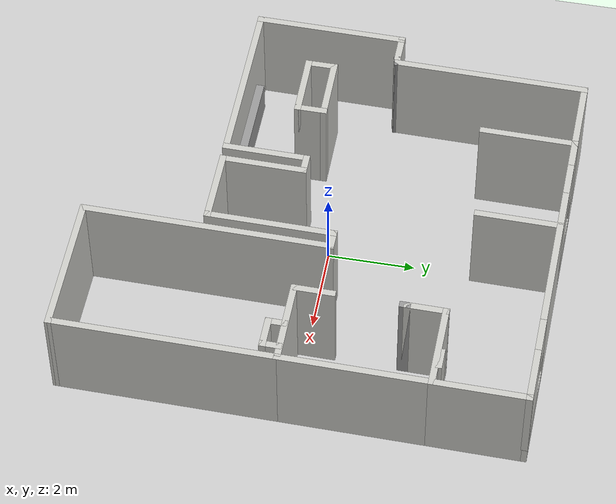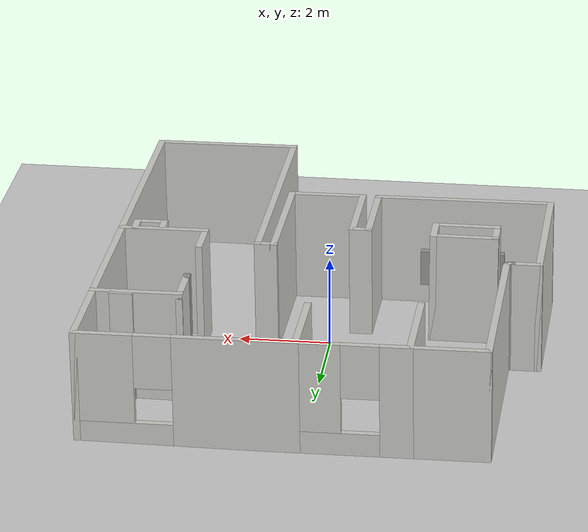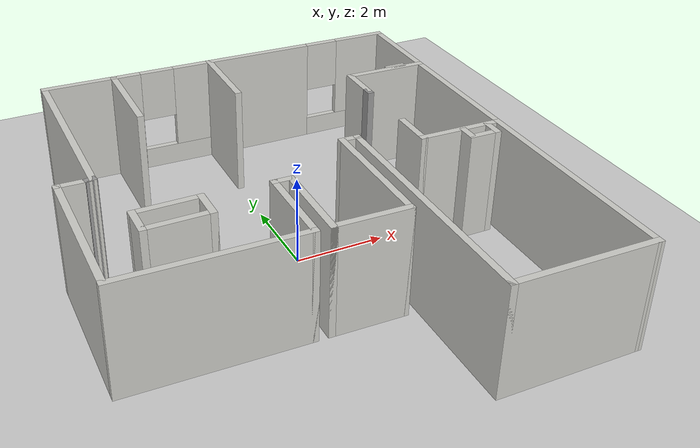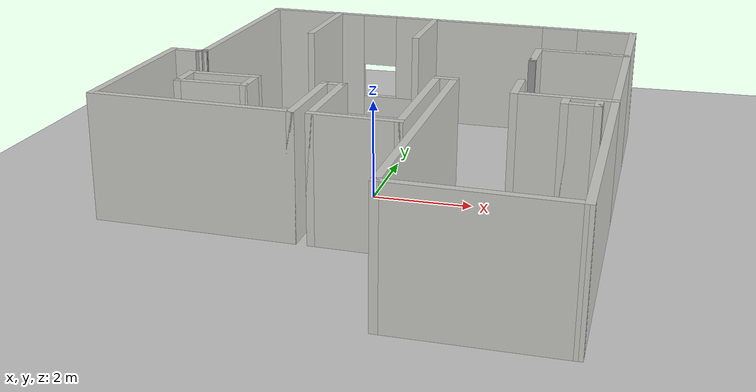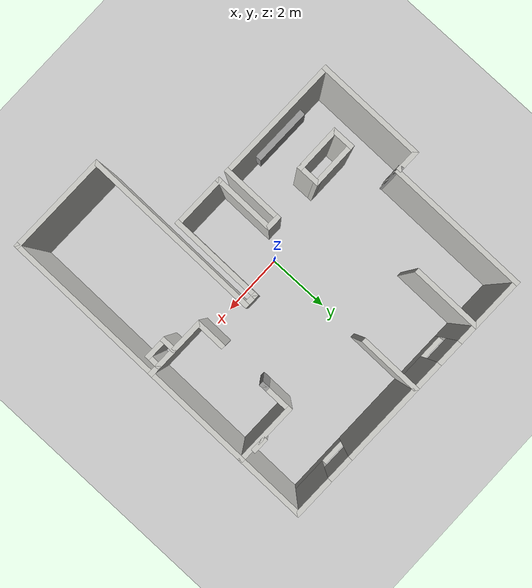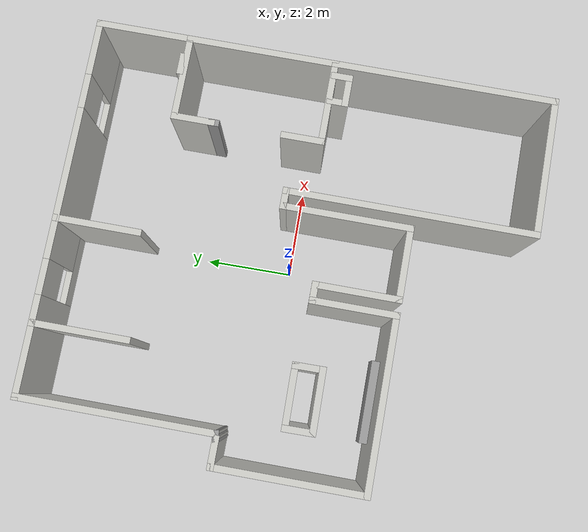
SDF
<sdf version="1.6">
 <world name="default">
  <light name="sun" type="directional">
   <pose>0 0 10 0 -0 0</pose>
   <diffuse>0.8 0.8 0.8 1</diffuse>
   <specular>0.2 0.2 0.2 1</specular>
   <attenuation>
    <range>1000</range>
    <constant>0.9</constant>
    <linear>0.01</linear>
    <quadratic>0.001</quadratic>
   </attenuation>
   <direction>-0.5 0.1 -0.9</direction>
  </light>
  <model name="ground_plane">
   <static>1</static>
   <link name="link">
    <collision name="collision">
     <geometry><plane><normal>0 0 1</normal><size>100 100</size></plane></geometry>
     <surface><friction><ode><mu>100</mu><mu2>50</mu2></ode></friction></surface>
    </collision>
    <visual name="visual">
     <cast_shadows>0</cast_shadows>
     <geometry><plane><normal>0 0 1</normal><size>100 100</size></plane></geometry>
     <material>
      <script><uri>file://media/materials/scripts/gazebo.material</uri><name>Gazebo/Grey</name></script>
     </material>
    </visual>
   </link>
  </model>
  <gravity>0 0 -9.8</gravity>
  <magnetic_field>6e-06 2.3e-05 -4.2e-05</magnetic_field>
  <atmosphere type="adiabatic"/>
  <physics name="default_physics" default="0" type="ode">
   <max_step_size>0.001</max_step_size>
   <real_time_factor>1</real_time_factor>
   <real_time_update_rate>1000</real_time_update_rate>
  </physics>
  <scene><ambient>0.4 0.4 0.4 1</ambient><background>0.7 0.7 0.7 1</background><shadows>1</shadows></scene>
  <spherical_coordinates>
   <surface_model>EARTH_WGS84</surface_model>
   <latitude_deg>0</latitude_deg>
   <longitude_deg>0</longitude_deg>
   <elevation>0</elevation>
   <heading_deg>0</heading_deg>
  </spherical_coordinates>
  <model name="Untitled">
   <pose>-0.01893 -0.016621 1e-06 0.000521 -0.011803 3.12934</pose>
   <link name="Wall_0">
    <collision name="Wall_0_Collision">
     <geometry><box><size>3.25 0.15 2.5</size></box></geometry>
     <pose>0 0 1.25 0 -0 0</pose>
    </collision>
    <visual name="Wall_0_Visual">
     <pose>0 0 1.25 0 -0 0</pose>
     <geometry><box><size>3.25 0.15 2.5</size></box></geometry>
     <material>
      <script><uri>file://media/materials/scripts/gazebo.material</uri><name>Gazebo/CeilingTiled</name></script>
      <ambient>1 1 1 1</ambient>
     </material>
     <meta><layer>0</layer></meta>
    </visual>
    <pose>-3.07497 5.23792 0 0 -0 0</pose>
   </link>
   <link name="Wall_1">
    <collision name="Wall_1_Collision">
     <geometry><box><size>5.75 0.15 2.5</size></box></geometry>
     <pose>0 0 1.25 0 -0 0</pose>
    </collision>
    <visual name="Wall_1_Visual">
     <pose>0 0 1.25 0 -0 0</pose>
     <geometry><box><size>5.75 0.15 2.5</size></box></geometry>
     <material>
      <script><uri>file://media/materials/scripts/gazebo.material</uri><name>Gazebo/CeilingTiled</name></script>
      <ambient>1 1 1 1</ambient>
     </material>
     <meta><layer>0</layer></meta>
    </visual>
    <pose>-1.52497 2.43792 0 0 0 -1.5708</pose>
   </link>
   <link name="Wall_10">
    <collision name="Wall_10_Collision">
     <geometry><box><size>0.75 0.15 2.5</size></box></geometry>
     <pose>0 0 1.25 0 -0 0</pose>
    </collision>
    <visual name="Wall_10_Visual">
     <pose>0 0 1.25 0 -0 0</pose>
     <geometry><box><size>0.75 0.15 2.5</size></box></geometry>
     <material>
      <script><uri>file://media/materials/scripts/gazebo.material</uri><name>Gazebo/CeilingTiled</name></script>
      <ambient>1 1 1 1</ambient>
     </material>
     <meta><layer>0</layer></meta>
    </visual>
    <pose>4.32503 -0.862084 0 0 -0 3.14159</pose>
   </link>
   <link name="Wall_11">
    <collision name="Wall_11_Collision">
     <geometry><box><size>0.25 0.15 2.5</size></box></geometry>
     <pose>0 0 1.25 0 -0 0</pose>
    </collision>
    <visual name="Wall_11_Visual">
     <pose>0 0 1.25 0 -0 0</pose>
     <geometry><box><size>0.25 0.15 2.5</size></box></geometry>
     <material>
      <script><uri>file://media/materials/scripts/gazebo.material</uri><name>Gazebo/Grey</name></script>
      <ambient>1 1 1 1</ambient>
     </material>
     <meta><layer>0</layer></meta>
    </visual>
    <pose>3.97673 -0.875025 0 0 0 -2.87979</pose>
   </link>
   <link name="Wall_12">
    <collision name="Wall_12_Collision">
     <geometry><box><size>4.5 0.15 2.5</size></box></geometry>
     <pose>0 0 1.25 0 -0 0</pose>
    </collision>
    <visual name="Wall_12_Visual">
     <pose>0 0 1.25 0 -0 0</pose>
     <geometry><box><size>4.5 0.15 2.5</size></box></geometry>
     <material>
      <script><uri>file://media/materials/scripts/gazebo.material</uri><name>Gazebo/CeilingTiled</name></script>
      <ambient>1 1 1 1</ambient>
     </material>
     <meta><layer>0</layer></meta>
    </visual>
    <pose>3.92843 -3.06297 0 0 0 -1.5708</pose>
   </link>
   <link name="Wall_13">
    <collision name="Wall_13_Collision">
     <geometry><box><size>1.75 0.15 2.5</size></box></geometry>
     <pose>0 0 1.25 0 -0 0</pose>
    </collision>
    <visual name="Wall_13_Visual">
     <pose>0 0 1.25 0 -0 0</pose>
     <geometry><box><size>1.75 0.15 2.5</size></box></geometry>
     <material>
      <script><uri>file://media/materials/scripts/gazebo.material</uri><name>Gazebo/CeilingTiled</name></script>
      <ambient>1 1 1 1</ambient>
     </material>
     <meta><layer>0</layer></meta>
    </visual>
    <pose>3.12843 -5.23797 0 0 -0 3.14159</pose>
   </link>
   <link name="Wall_14">
    <collision name="Wall_14_Collision">
     <geometry><box><size>2.25 0.15 2.5</size></box></geometry>
     <pose>0 0 1.25 0 -0 0</pose>
    </collision>
    <visual name="Wall_14_Visual">
     <pose>0 0 1.25 0 -0 0</pose>
     <geometry><box><size>2.25 0.15 2.5</size></box></geometry>
     <material>
      <script><uri>file://media/materials/scripts/gazebo.material</uri><name>Gazebo/CeilingTiled</name></script>
      <ambient>1 1 1 1</ambient>
     </material>
     <meta><layer>0</layer></meta>
    </visual>
    <pose>2.32843 -4.18797 0 0 -0 1.5708</pose>
   </link>
   <link name="Wall_16">
    <pose>1.15343 -5.23797 0 0 -0 3.14159</pose>
    <visual name="Wall_16_Visual_0">
     <pose>-0.900628 0 1.25 0 -0 0</pose>
     <geometry><box><size>0.698745 0.15 2.5</size></box></geometry>
     <material>
      <script><uri>file://media/materials/scripts/gazebo.material</uri><name>Gazebo/CeilingTiled</name></script>
      <ambient>1 1 1 1</ambient>
     </material>
     <meta><layer>0</layer></meta>
    </visual>
    <collision name="Wall_16_Collision_0">
     <geometry><box><size>0.698745 0.15 2.5</size></box></geometry>
     <pose>-0.900628 0 1.25 0 -0 0</pose>
    </collision>
    <visual name="Wall_16_Visual_1">
     <pose>0.349372 0 0.25 0 -0 0</pose>
     <geometry><box><size>1.80126 0.15 0.5</size></box></geometry>
     <material>
      <script><uri>file://media/materials/scripts/gazebo.material</uri><name>Gazebo/CeilingTiled</name></script>
      <ambient>1 1 1 1</ambient>
     </material>
     <meta><layer>0</layer></meta>
    </visual>
    <collision name="Wall_16_Collision_1">
     <geometry><box><size>1.80126 0.15 0.5</size></box></geometry>
     <pose>0.349372 0 0.25 0 -0 0</pose>
    </collision>
    <visual name="Wall_16_Visual_2">
     <pose>0.749372 0 1.5 0 -0 0</pose>
     <geometry><box><size>1.00126 0.15 2</size></box></geometry>
     <material>
      <script><uri>file://media/materials/scripts/gazebo.material</uri><name>Gazebo/CeilingTiled</name></script>
      <ambient>1 1 1 1</ambient>
     </material>
     <meta><layer>0</layer></meta>
    </visual>
    <collision name="Wall_16_Collision_2">
     <geometry><box><size>1.00126 0.15 2</size></box></geometry>
     <pose>0.749372 0 1.5 0 -0 0</pose>
    </collision>
    <visual name="Wall_16_Visual_3">
     <pose>-0.151255 0 1.9 0 -0 0</pose>
     <geometry><box><size>0.8 0.15 1.2</size></box></geometry>
     <material>
      <script><uri>file://media/materials/scripts/gazebo.material</uri><name>Gazebo/CeilingTiled</name></script>
      <ambient>1 1 1 1</ambient>
     </material>
     <meta><layer>0</layer></meta>
    </visual>
    <collision name="Wall_16_Collision_3">
     <geometry><box><size>0.8 0.15 1.2</size></box></geometry>
     <pose>-0.151255 0 1.9 0 -0 0</pose>
    </collision>
   </link>
   <link name="Wall_17">
    <collision name="Wall_17_Collision">
     <geometry><box><size>2 0.15 2.5</size></box></geometry>
     <pose>0 0 1.25 0 -0 0</pose>
    </collision>
    <visual name="Wall_17_Visual">
     <pose>0 0 1.25 0 -0 0</pose>
     <geometry><box><size>2 0.15 2.5</size></box></geometry>
     <material>
      <script><uri>file://media/materials/scripts/gazebo.material</uri><name>Gazebo/CeilingTiled</name></script>
      <ambient>1 1 1 1</ambient>
     </material>
     <meta><layer>0</layer></meta>
    </visual>
    <pose>-0.021567 -4.31297 0 0 -0 1.5708</pose>
   </link>
   <link name="Wall_19">
    <pose>-2.32157 -5.23797 0 0 -0 3.14159</pose>
    <visual name="Wall_19_Visual_0">
     <pose>-1.05563 0 1.25 0 -0 0</pose>
     <geometry><box><size>2.63875 0.15 2.5</size></box></geometry>
     <material>
      <script><uri>file://media/materials/scripts/gazebo.material</uri><name>Gazebo/CeilingTiled</name></script>
      <ambient>1 1 1 1</ambient>
     </material>
     <meta><layer>0</layer></meta>
    </visual>
    <collision name="Wall_19_Collision_0">
     <geometry><box><size>2.63875 0.15 2.5</size></box></geometry>
     <pose>-1.05563 0 1.25 0 -0 0</pose>
    </collision>
    <visual name="Wall_19_Visual_1">
     <pose>1.31937 0 0.25 0 -0 0</pose>
     <geometry><box><size>2.11125 0.15 0.5</size></box></geometry>
     <material>
      <script><uri>file://media/materials/scripts/gazebo.material</uri><name>Gazebo/CeilingTiled</name></script>
      <ambient>1 1 1 1</ambient>
     </material>
     <meta><layer>0</layer></meta>
    </visual>
    <collision name="Wall_19_Collision_1">
     <geometry><box><size>2.11125 0.15 0.5</size></box></geometry>
     <pose>1.31937 0 0.25 0 -0 0</pose>
    </collision>
    <visual name="Wall_19_Visual_2">
     <pose>1.71937 0 1.5 0 -0 0</pose>
     <geometry><box><size>1.31126 0.15 2</size></box></geometry>
     <material>
      <script><uri>file://media/materials/scripts/gazebo.material</uri><name>Gazebo/CeilingTiled</name></script>
      <ambient>1 1 1 1</ambient>
     </material>
     <meta><layer>0</layer></meta>
    </visual>
    <collision name="Wall_19_Collision_2">
     <geometry><box><size>1.31126 0.15 2</size></box></geometry>
     <pose>1.71937 0 1.5 0 -0 0</pose>
    </collision>
    <visual name="Wall_19_Visual_3">
     <pose>0.663745 0 1.9 0 -0 0</pose>
     <geometry><box><size>0.8 0.15 1.2</size></box></geometry>
     <material>
      <script><uri>file://media/materials/scripts/gazebo.material</uri><name>Gazebo/CeilingTiled</name></script>
      <ambient>1 1 1 1</ambient>
     </material>
     <meta><layer>0</layer></meta>
    </visual>
    <collision name="Wall_19_Collision_3">
     <geometry><box><size>0.8 0.15 1.2</size></box></geometry>
     <pose>0.663745 0 1.9 0 -0 0</pose>
    </collision>
   </link>
   <link name="Wall_2">
    <collision name="Wall_2_Collision">
     <geometry><box><size>0.5 0.15 2.5</size></box></geometry>
     <pose>0 0 1.25 0 -0 0</pose>
    </collision>
    <visual name="Wall_2_Visual">
     <pose>0 0 1.25 0 -0 0</pose>
     <geometry><box><size>0.5 0.15 2.5</size></box></geometry>
     <material>
      <script><uri>file://media/materials/scripts/gazebo.material</uri><name>Gazebo/CeilingTiled</name></script>
      <ambient>1 1 1 1</ambient>
     </material>
     <meta><layer>0</layer></meta>
    </visual>
    <pose>-1.34997 -0.362084 0 0 -0 0</pose>
   </link>
   <link name="Wall_20">
    <collision name="Wall_20_Collision">
     <geometry><box><size>2.25 0.15 2.5</size></box></geometry>
     <pose>0 0 1.25 0 -0 0</pose>
    </collision>
    <visual name="Wall_20_Visual">
     <pose>0 0 1.25 0 -0 0</pose>
     <geometry><box><size>2.25 0.15 2.5</size></box></geometry>
     <material>
      <script><uri>file://media/materials/scripts/gazebo.material</uri><name>Gazebo/CeilingTiled</name></script>
      <ambient>1 1 1 1</ambient>
     </material>
     <meta><layer>0</layer></meta>
    </visual>
    <pose>-4.62157 -4.18797 0 0 -0 1.5708</pose>
   </link>
   <link name="Wall_21">
    <collision name="Wall_21_Collision">
     <geometry><box><size>2 0.15 2.5</size></box></geometry>
     <pose>0 0 1.25 0 -0 0</pose>
    </collision>
    <visual name="Wall_21_Visual">
     <pose>0 0 1.25 0 -0 0</pose>
     <geometry><box><size>2 0.15 2.5</size></box></geometry>
     <material>
      <script><uri>file://media/materials/scripts/gazebo.material</uri><name>Gazebo/CeilingTiled</name></script>
      <ambient>1 1 1 1</ambient>
     </material>
     <meta><layer>0</layer></meta>
    </visual>
    <pose>-3.69657 -3.13797 0 0 -0 0</pose>
   </link>
   <link name="Wall_22">
    <collision name="Wall_22_Collision">
     <geometry><box><size>1 0.15 2.5</size></box></geometry>
     <pose>0 0 1.25 0 -0 0</pose>
    </collision>
    <visual name="Wall_22_Visual">
     <pose>0 0 1.25 0 -0 0</pose>
     <geometry><box><size>1 0.15 2.5</size></box></geometry>
     <material>
      <script><uri>file://media/materials/scripts/gazebo.material</uri><name>Gazebo/CeilingTiled</name></script>
      <ambient>1 1 1 1</ambient>
     </material>
     <meta><layer>0</layer></meta>
    </visual>
    <pose>-2.77157 -2.71297 0 0 -0 1.5708</pose>
   </link>
   <link name="Wall_23">
    <collision name="Wall_23_Collision">
     <geometry><box><size>0.25 0.15 2.5</size></box></geometry>
     <pose>0 0 1.25 0 -0 0</pose>
    </collision>
    <visual name="Wall_23_Visual">
     <pose>0 0 1.25 0 -0 0</pose>
     <geometry><box><size>0.25 0.15 2.5</size></box></geometry>
     <material>
      <script><uri>file://media/materials/scripts/gazebo.material</uri><name>Gazebo/Grey</name></script>
      <ambient>1 1 1 1</ambient>
     </material>
     <meta><layer>0</layer></meta>
    </visual>
    <pose>-2.77157 -2.23797 0 0 -0 1.5708</pose>
   </link>
   <link name="Wall_27">
    <collision name="Wall_27_Collision">
     <geometry><box><size>0.5 0.15 2.5</size></box></geometry>
     <pose>0 0 1.25 0 -0 0</pose>
    </collision>
    <visual name="Wall_27_Visual">
     <pose>0 0 1.25 0 -0 0</pose>
     <geometry><box><size>0.5 0.15 2.5</size></box></geometry>
     <material>
      <script><uri>file://media/materials/scripts/gazebo.material</uri><name>Gazebo/CeilingTiled</name></script>
      <ambient>1 1 1 1</ambient>
     </material>
     <meta><layer>0</layer></meta>
    </visual>
    <pose>-4.00496 -3.2173 0 0 -0 0</pose>
   </link>
   <link name="Wall_29">
    <collision name="Wall_29_Collision">
     <geometry><box><size>3.5 0.15 2.5</size></box></geometry>
     <pose>0 0 1.25 0 -0 0</pose>
    </collision>
    <visual name="Wall_29_Visual">
     <pose>0 0 1.25 0 -0 0</pose>
     <geometry><box><size>3.5 0.15 2.5</size></box></geometry>
     <material>
      <script><uri>file://media/materials/scripts/gazebo.material</uri><name>Gazebo/CeilingTiled</name></script>
      <ambient>1 1 1 1</ambient>
     </material>
     <meta><layer>0</layer></meta>
    </visual>
    <pose>-4.62157 -1.46297 0 0 -0 1.5708</pose>
   </link>
   <link name="Wall_3">
    <collision name="Wall_3_Collision">
     <geometry><box><size>3 0.15 2.5</size></box></geometry>
     <pose>0 0 1.25 0 -0 0</pose>
    </collision>
    <visual name="Wall_3_Visual">
     <pose>0 0 1.25 0 -0 0</pose>
     <geometry><box><size>3 0.15 2.5</size></box></geometry>
     <material>
      <script><uri>file://media/materials/scripts/gazebo.material</uri><name>Gazebo/CeilingTiled</name></script>
      <ambient>1 1 1 1</ambient>
     </material>
     <meta><layer>0</layer></meta>
    </visual>
    <pose>-1.17498 1.06292 0 0 -0 1.5708</pose>
   </link>
   <link name="Wall_30">
    <collision name="Wall_30_Collision">
     <geometry><box><size>2 0.15 2.5</size></box></geometry>
     <pose>0 0 1.25 0 -0 0</pose>
    </collision>
    <visual name="Wall_30_Visual">
     <pose>0 0 1.25 0 -0 0</pose>
     <geometry><box><size>2 0.15 2.5</size></box></geometry>
     <material>
      <script><uri>file://media/materials/scripts/gazebo.material</uri><name>Gazebo/CeilingTiled</name></script>
      <ambient>1 1 1 1</ambient>
     </material>
     <meta><layer>0</layer></meta>
    </visual>
    <pose>-3.69657 0.212034 0 0 -0 0</pose>
   </link>
   <link name="Wall_31">
    <collision name="Wall_31_Collision">
     <geometry><box><size>1 0.15 2.5</size></box></geometry>
     <pose>0 0 1.25 0 -0 0</pose>
    </collision>
    <visual name="Wall_31_Visual">
     <pose>0 0 1.25 0 -0 0</pose>
     <geometry><box><size>1 0.15 2.5</size></box></geometry>
     <material>
      <script><uri>file://media/materials/scripts/gazebo.material</uri><name>Gazebo/CeilingTiled</name></script>
      <ambient>1 1 1 1</ambient>
     </material>
     <meta><layer>0</layer></meta>
    </visual>
    <pose>-2.77157 -0.212966 0 0 0 -1.5708</pose>
   </link>
   <link name="Wall_33">
    <collision name="Wall_33_Collision">
     <geometry><box><size>0.75 0.15 2.5</size></box></geometry>
     <pose>0 0 1.25 0 -0 0</pose>
    </collision>
    <visual name="Wall_33_Visual">
     <pose>0 0 1.25 0 -0 0</pose>
     <geometry><box><size>0.75 0.15 2.5</size></box></geometry>
     <material>
      <script><uri>file://media/materials/scripts/gazebo.material</uri><name>Gazebo/CeilingTiled</name></script>
      <ambient>1 1 1 1</ambient>
     </material>
     <meta><layer>0</layer></meta>
    </visual>
    <pose>-4.04179 0.585524 0 0 -0 0</pose>
   </link>
   <link name="Wall_35">
    <collision name="Wall_35_Collision">
     <geometry><box><size>5.17588 0.15 2.5</size></box></geometry>
     <pose>0 0 1.25 0 -0 0</pose>
    </collision>
    <visual name="Wall_35_Visual">
     <pose>0 0 1.25 0 -0 0</pose>
     <geometry><box><size>5.17588 0.15 2.5</size></box></geometry>
     <material>
      <script><uri>file://media/materials/scripts/gazebo.material</uri><name>Gazebo/CeilingTiled</name></script>
      <ambient>1 1 1 1</ambient>
     </material>
     <meta><layer>0</layer></meta>
    </visual>
    <pose>-4.62327 2.72498 0 0 -0 1.57147</pose>
   </link>
   <link name="Wall_4">
    <collision name="Wall_4_Collision">
     <geometry><box><size>1.75 0.15 2.5</size></box></geometry>
     <pose>0 0 1.25 0 -0 0</pose>
    </collision>
    <visual name="Wall_4_Visual">
     <pose>0 0 1.25 0 -0 0</pose>
     <geometry><box><size>1.75 0.15 2.5</size></box></geometry>
     <material>
      <script><uri>file://media/materials/scripts/gazebo.material</uri><name>Gazebo/CeilingTiled</name></script>
      <ambient>1 1 1 1</ambient>
     </material>
     <meta><layer>0</layer></meta>
    </visual>
    <pose>-0.374975 2.48792 0 0 -0 0</pose>
   </link>
   <link name="Wall_42">
    <collision name="Wall_42_Collision">
     <geometry><box><size>0.5 0.15 2.5</size></box></geometry>
     <pose>0 0 1.25 0 -0 0</pose>
    </collision>
    <visual name="Wall_42_Visual">
     <pose>0 0 1.25 0 -0 0</pose>
     <geometry><box><size>0.5 0.15 2.5</size></box></geometry>
     <material>
      <script><uri>file://media/materials/scripts/gazebo.material</uri><name>Gazebo/CeilingTiled</name></script>
      <ambient>1 1 1 1</ambient>
     </material>
     <meta><layer>0</layer></meta>
    </visual>
    <pose>-4.34178 0.410524 0 0 0 -1.5708</pose>
   </link>
   <link name="Wall_44">
    <collision name="Wall_44_Collision">
     <geometry><box><size>0.5 0.15 2.5</size></box></geometry>
     <pose>0 0 1.25 0 -0 0</pose>
    </collision>
    <visual name="Wall_44_Visual">
     <pose>0 0 1.25 0 -0 0</pose>
     <geometry><box><size>0.5 0.15 2.5</size></box></geometry>
     <material>
      <script><uri>file://media/materials/scripts/gazebo.material</uri><name>Gazebo/CeilingTiled</name></script>
      <ambient>1 1 1 1</ambient>
     </material>
     <meta><layer>0</layer></meta>
    </visual>
    <pose>-3.74179 0.410524 0 0 0 -1.5708</pose>
   </link>
   <link name="Wall_5">
    <collision name="Wall_5_Collision">
     <geometry><box><size>2 0.15 2.5</size></box></geometry>
     <pose>0 0 1.25 0 -0 0</pose>
    </collision>
    <visual name="Wall_5_Visual">
     <pose>0 0 1.25 0 -0 0</pose>
     <geometry><box><size>2 0.15 2.5</size></box></geometry>
     <material>
      <script><uri>file://media/materials/scripts/gazebo.material</uri><name>Gazebo/CeilingTiled</name></script>
      <ambient>1 1 1 1</ambient>
     </material>
     <meta><layer>0</layer></meta>
    </visual>
    <pose>0.425025 1.56292 0 0 0 -1.5708</pose>
   </link>
   <link name="Wall_6">
    <collision name="Wall_6_Collision">
     <geometry><box><size>0.5 0.15 2.5</size></box></geometry>
     <pose>0 0 1.25 0 -0 0</pose>
    </collision>
    <visual name="Wall_6_Visual">
     <pose>0 0 1.25 0 -0 0</pose>
     <geometry><box><size>0.5 0.15 2.5</size></box></geometry>
     <material>
      <script><uri>file://media/materials/scripts/gazebo.material</uri><name>Gazebo/CeilingTiled</name></script>
      <ambient>1 1 1 1</ambient>
     </material>
     <meta><layer>0</layer></meta>
    </visual>
    <pose>0.600025 0.637916 0 0 -0 0</pose>
   </link>
   <link name="Wall_7">
    <collision name="Wall_7_Collision">
     <geometry><box><size>2 0.15 2.5</size></box></geometry>
     <pose>0 0 1.25 0 -0 0</pose>
    </collision>
    <visual name="Wall_7_Visual">
     <pose>0 0 1.25 0 -0 0</pose>
     <geometry><box><size>2 0.15 2.5</size></box></geometry>
     <material>
      <script><uri>file://media/materials/scripts/gazebo.material</uri><name>Gazebo/CeilingTiled</name></script>
      <ambient>1 1 1 1</ambient>
     </material>
     <meta><layer>0</layer></meta>
    </visual>
    <pose>0.775025 1.56292 0 0 -0 1.5708</pose>
   </link>
   <link name="Wall_8">
    <collision name="Wall_8_Collision">
     <geometry><box><size>4 0.15 2.5</size></box></geometry>
     <pose>0 0 1.25 0 -0 0</pose>
    </collision>
    <visual name="Wall_8_Visual">
     <pose>0 0 1.25 0 -0 0</pose>
     <geometry><box><size>4 0.15 2.5</size></box></geometry>
     <material>
      <script><uri>file://media/materials/scripts/gazebo.material</uri><name>Gazebo/CeilingTiled</name></script>
      <ambient>1 1 1 1</ambient>
     </material>
     <meta><layer>0</layer></meta>
    </visual>
    <pose>2.70003 2.48792 0 0 -0 0</pose>
   </link>
   <link name="Wall_9">
    <collision name="Wall_9_Collision">
     <geometry><box><size>3.5 0.15 2.5</size></box></geometry>
     <pose>0 0 1.25 0 -0 0</pose>
    </collision>
    <visual name="Wall_9_Visual">
     <pose>0 0 1.25 0 -0 0</pose>
     <geometry><box><size>3.5 0.15 2.5</size></box></geometry>
     <material>
      <script><uri>file://media/materials/scripts/gazebo.material</uri><name>Gazebo/CeilingTiled</name></script>
      <ambient>1 1 1 1</ambient>
     </material>
     <meta><layer>0</layer></meta>
    </visual>
    <pose>4.62502 0.812916 0 0 0 -1.5708</pose>
   </link>
   <link name="Window_2">
    <collision name="Window_2_Collision">
     <geometry><box><size>1.87 0.2 0.8</size></box></geometry>
     <pose>0 0 0.4 0 -0 0</pose>
    </collision>
    <visual name="Window_2_Visual">
     <pose>0 0 0.4 0 -0 0</pose>
     <geometry><box><size>1.87 0.2 0.8</size></box></geometry>
     <material>
      <script><uri>file://media/materials/scripts/gazebo.material</uri><name>Gazebo/Grey</name></script>
     </material>
    </visual>
    <pose>2.68969 2.32349 0.5 0 -0 0</pose>
   </link>
   <static>1</static>
  </model>
  <model name="Untitled_1">
   <pose>-2.885 -0.81 0 0 -0 0</pose>
   <link name="Wall_3">
    <collision name="Wall_3_Collision">
     <geometry><box><size>1.5 0.15 2.5</size></box></geometry>
     <pose>0 0 1.25 0 -0 0</pose>
    </collision>
    <visual name="Wall_3_Visual">
     <pose>0 0 1.25 0 -0 0</pose>
     <geometry><box><size>1.5 0.15 2.5</size></box></geometry>
     <material>
      <script><uri>file://media/materials/scripts/gazebo.material</uri><name>Gazebo/CeilingTiled</name></script>
      <ambient>1 1 1 1</ambient>
     </material>
     <meta><layer>0</layer></meta>
    </visual>
    <pose>0 -0.3 0 0 -0 0</pose>
   </link>
   <link name="Wall_4">
    <collision name="Wall_4_Collision">
     <geometry><box><size>0.75 0.15 2.5</size></box></geometry>
     <pose>0 0 1.25 0 -0 0</pose>
    </collision>
    <visual name="Wall_4_Visual">
     <pose>0 0 1.25 0 -0 0</pose>
     <geometry><box><size>0.75 0.15 2.5</size></box></geometry>
     <material>
      <script><uri>file://media/materials/scripts/gazebo.material</uri><name>Gazebo/CeilingTiled</name></script>
      <ambient>1 1 1 1</ambient>
     </material>
     <meta><layer>0</layer></meta>
    </visual>
    <pose>0.675 0 0 0 -0 1.5708</pose>
   </link>
   <link name="Wall_5">
    <collision name="Wall_5_Collision">
     <geometry><box><size>1.5 0.15 2.5</size></box></geometry>
     <pose>0 0 1.25 0 -0 0</pose>
    </collision>
    <visual name="Wall_5_Visual">
     <pose>0 0 1.25 0 -0 0</pose>
     <geometry><box><size>1.5 0.15 2.5</size></box></geometry>
     <material>
      <script><uri>file://media/materials/scripts/gazebo.material</uri><name>Gazebo/CeilingTiled</name></script>
      <ambient>1 1 1 1</ambient>
     </material>
     <meta><layer>0</layer></meta>
    </visual>
    <pose>0 0.3 0 0 -0 3.14159</pose>
   </link>
   <link name="Wall_6">
    <collision name="Wall_6_Collision">
     <geometry><box><size>0.75 0.15 2.5</size></box></geometry>
     <pose>0 0 1.25 0 -0 0</pose>
    </collision>
    <visual name="Wall_6_Visual">
     <pose>0 0 1.25 0 -0 0</pose>
     <geometry><box><size>0.75 0.15 2.5</size></box></geometry>
     <material>
      <script><uri>file://media/materials/scripts/gazebo.material</uri><name>Gazebo/CeilingTiled</name></script>
      <ambient>1 1 1 1</ambient>
     </material>
     <meta><layer>0</layer></meta>
    </visual>
    <pose>-0.675 0 0 0 0 -1.5708</pose>
   </link>
   <static>1</static>
  </model>
 </world>
</sdf>
